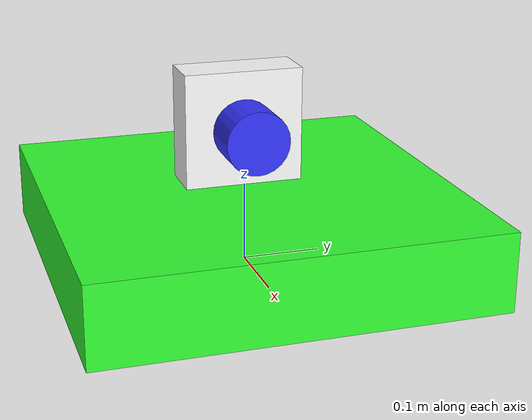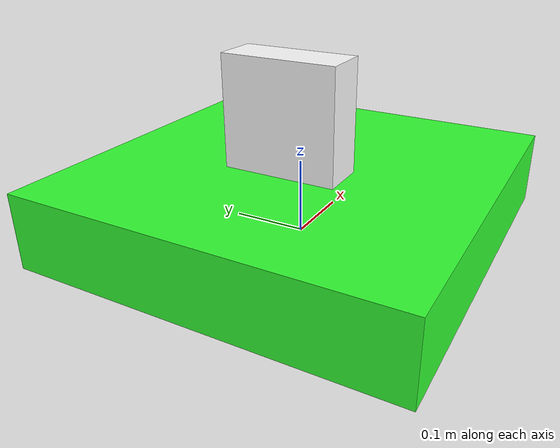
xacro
<?xml version="1.0"?>
<robot xmlns:xacro="http://www.ros.org/wiki/xacro"  name="robot">

    <!-- This is an example of a URDF. -->
    <!-- As we move through the file, new things to note will be pointed out. -->
    <!-- It's not meant an example of GOOD design, but an example of some of the various features of URDF/xacro. -->

    <!-- This will include all the contents of example_include.xacro first. Go check it out! -->
    <xacro:include filename="example_include.xacro" />

    <!-- base_link is a large rectangular plate. Some things to note: -->
    <!-- - We set the visual origin Z to half the box height, so that the link origin sits at the bottom of the box -->
    <!-- - We set the collision to be identical to the visual -->
    <!-- - We specified the colour manually (but still need to enter a name) -->
    <!-- - We specified all the inertial parameters manually -->
    <link name="base_link">
        <visual>
            <origin xyz="0 0 0.05" rpy="0 0 0"/>
            <geometry>
                <box size="0.5 0.5 0.1" />
            </geometry>
            <material name="green">
                <color rgba="0.2 1 0.2 1"/>
            </material>
        </visual>
        <collision>
            <origin xyz="0 0 0.05" rpy="0 0 0"/>
            <geometry>
                <box size="0.5 0.5 0.1" />
            </geometry>
        </collision>
        <inertial>
            <origin xyz="0 0 0.05" rpy="0 0 0"/>
            <mass value="12" />
            <inertia ixx="2.26" ixy="0.0" ixz="0.0" iyy="6.26" iyz="0.0" izz="8.5" />
        </inertial>
    </link>

    <!-- This NOT first link called "world" is empty, but the rviz camera expects it to exist -->
    <link name="world"></link>

    <!-- A simple fixed joint from our empty world link, to our base. -->
    <!-- The base origin is offset from the world origin. -->
    <joint name="base_joint" type="fixed">
        <origin xyz="1.5 1.0 0" rpy="0 0 0"/>
        <parent link="base_link"/>
        <child link="world"/>
    </joint>

<!--    &lt;!&ndash; slider_joint lets slider_link move back and forth along the top of the base in one dimension.  &ndash;&gt;-->
<!--    &lt;!&ndash; - Origin is set to one of the top edges of the base_link box, so that our link skims across the top  &ndash;&gt;-->
<!--    &lt;!&ndash; - It moves along the X axis &ndash;&gt;-->
<!--    &lt;!&ndash; - We need to specify limits for the motion &ndash;&gt;-->

<!--    &lt;!&ndash; slider_link is the box skimming across the top of the base. Its parameters are similar to the base_link, however: &ndash;&gt;-->
<!--    &lt;!&ndash; - Instead of explicitly describing a colour, it uses the named material "blue". It knows about "blue" that material was included in example_include.xacro. &ndash;&gt;-->
<!--    &lt;!&ndash; - Instead of explicitly describing the inertia, we use a macro that was defined in the example_include.xacro &ndash;&gt;-->

<!--    &lt;!&ndash; arm_joint describes the rotation of the arm and is centred around the top corner of the slider box. &ndash;&gt;-->
<!--    &lt;!&ndash; - The axis of rotation is -1 in Y, so that positive is "up" &ndash;&gt;-->
<!--    &lt;!&ndash; - The upper limit uses xacro's mathematical features &ndash;&gt;-->

<!--    &lt;!&ndash; arm_link describes the arm &ndash;&gt;-->
<!--    &lt;!&ndash; - We use the "property" feature to define the arm length and radius and use them multiple times &ndash;&gt;-->
<!--    &lt;!&ndash; - The visual/collision origin is set to halfway along the length (similar to the box), but also with a rotation (again using the mathematical features). &ndash;&gt;-->
<!--    &lt;!&ndash;   This is because the cylinder extends along the Z axis by default, but we want it to be along the X axis (when the joint is at 0) &ndash;&gt;-->

    <!-- camera_joint describes where the camera is relative to the arm -->
    <!-- - Even though the camera isn't moving relative to the arm, it will probably be helpful to have its own link/frame rather than just adding more visuals to the arm -->
    <!-- - For this example, the camera_link origin will be at the centre of the camera's "sensor" -->
    <joint name="camera_joint" type="fixed">
        <origin xyz="0 0 0.17" rpy="0 0 0"/>
        <parent link="base_link"/>
        <child link="camera_link"/>
    </joint>

    <!-- camera_link describes the camera at the end of the arm -->
    <!-- - It has multiple visual elements, which ultimately get combined together -->
    <!-- - Even if we specify different materials, RViz will just colour them all the same as the first -->
    <!-- - Although we could also specify multiple collision geometries, instead we just use a single box that encompasses the whole camera -->
    <link name="camera_link">
        <visual>
            <origin xyz="-0.03 0 0" rpy="0 0 0"/>
            <geometry>
                <box size="0.06 0.15 0.15" />
            </geometry>
            <material name="white" />
        </visual>
        <visual>
            <origin xyz="0.03 0 0" rpy="0 ${pi/2} 0"/>
            <geometry>
                <cylinder length="0.06" radius="0.04" />
            </geometry>
            <material name="blue" />
        </visual>
        <collision>
            <origin xyz="0.0 0 0" rpy="0 0 0"/>
            <geometry>
                <box size="0.12 0.15 0.15" />
            </geometry>
        </collision>
        <xacro:inertial_box mass="0.1" x="0.12" y="0.15" z="0.15">
            <origin xyz="0.0 0 0" rpy="0 0 0"/>
        </xacro:inertial_box>
    </link>

    <xacro:include filename="example_gazebo.xacro" />

</robot>

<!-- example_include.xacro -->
<robot xmlns:xacro="http://www.ros.org/wiki/xacro" >

    <!-- This file is not a robot in and of itself, it just contains some useful tags that could be included in any robot -->

    <!-- Specify some colours -->

    <material name="white">
        <color rgba="1 1 1 1"/>
    </material>

    <material name="orange">
        <color rgba="1 0.3 0.1 1"/>
    </material>

    <material name="blue">
        <color rgba="0.2 0.2 1 1"/>
    </material>

    <!-- Specify some standard inertial calculations https://en.wikipedia.org/wiki/List_of_moments_of_inertia -->
    <!-- These make use of xacro's mathematical functionality -->

    <xacro:macro name="inertial_sphere" params="mass radius *origin">
        <inertial>
            <xacro:insert_block name="origin"/>
            <mass value="${mass}" />
            <inertia ixx="${(2/5) * mass * (radius*radius)}" ixy="0.0" ixz="0.0"
                    iyy="${(2/5) * mass * (radius*radius)}" iyz="0.0"
                    izz="${(2/5) * mass * (radius*radius)}" />
        </inertial>
    </xacro:macro>

    <xacro:macro name="inertial_box" params="mass x y z *origin">
        <inertial>
            <xacro:insert_block name="origin"/>
            <mass value="${mass}" />
            <inertia ixx="${(1/12) * mass * (y*y+z*z)}" ixy="0.0" ixz="0.0"
                    iyy="${(1/12) * mass * (x*x+z*z)}" iyz="0.0"
                    izz="${(1/12) * mass * (x*x+y*y)}" />
        </inertial>
    </xacro:macro>

    <xacro:macro name="inertial_cylinder" params="mass length radius *origin">
        <inertial>
            <xacro:insert_block name="origin"/>
            <mass value="${mass}" />
            <inertia ixx="${(1/12) * mass * (3*radius*radius + length*length)}" ixy="0.0" ixz="0.0"
                    iyy="${(1/12) * mass * (3*radius*radius + length*length)}" iyz="0.0"
                    izz="${(1/2) * mass * (radius*radius)}" />
        </inertial>
    </xacro:macro>

</robot>

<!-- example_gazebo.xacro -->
<robot xmlns:xacro="http://www.ros.org/wiki/xacro">

    <!-- To include it add the following line -->

    <!-- Instead, we need to add gazebo tags for our links that refer to Gazebo materials -->

    <gazebo reference="base_link">
        <material>Gazebo/Green</material>
    </gazebo>

    <gazebo reference="slider_link">
        <material>Gazebo/Blue</material>
    </gazebo>

    <gazebo reference="arm_link">
        <material>Gazebo/Orange</material>
    </gazebo>

    <!-- Gazebo requires the use of plugins to interact with other systems such as ROS. -->

    <!-- This plugin will publish the joint_states for the selected joints
            (which robot_state_publisher can then use to broadcast the approprate tf). -->

    <gazebo>
        <plugin name="gazebo_ros_joint_state_publisher"
            filename="libgazebo_ros_joint_state_publisher.so">
            <update_rate>20</update_rate>
            <joint_name>slider_joint</joint_name>
            <joint_name>arm_joint</joint_name>
        </plugin>
    </gazebo>

    <!-- This plugin will read a JointTrajectory message from the /set_joint_trajectory topic
            and move the machine accordingly. It's a bit clunky but it works. -->
    <gazebo>
        <plugin name="gazebo_ros_joint_pose_trajectory"
            filename="libgazebo_ros_joint_pose_trajectory.so">
            <update_rate>2</update_rate>
        </plugin>
    </gazebo>

    <!-- The next section shows an example of adding a sensor, in this case a depth camera. -->

    <!-- First, create the link and joint for the optical frame -->

    <joint name="camera_optical_joint" type="fixed">
        <origin xyz="0 0 0" rpy="-1.571 0 -1.571" />
        <parent link="camera_link" />
        <child link="camera_link_optical" />
    </joint>

    <link name="camera_link_optical"></link>

    <!-- Add a gazebo tag for the ORIGINAL camera_link (but in the plugin we reference the optical frame so that ROS can orient things correctly) -->
    <!-- Note that although visualise is set to true, it won't actually visualise the depth camera in gazebo. To see the preview,
            try swapping "depth" to "camera"-->
    <gazebo reference="camera_link">
        <sensor type="camera" name="my_camera">
            <update_rate>20</update_rate>
            <visualize>true</visualize>
            <camera name="cam">
                <horizontal_fov>1.3962634</horizontal_fov>
                <image>
                    <width>640</width>
                    <height>480</height>
                    <format>R8B8G8</format>
                </image>
                <clip>
                    <near>0.02</near>
                    <far>300</far>
                </clip>
                <noise>
                    <type>gaussian</type>
                    <mean>0.0</mean>
                    <stddev>0.007</stddev>
                </noise>
            </camera>
            <plugin name="camera_controller" filename="libgazebo_ros_camera.so">
                <frame_name>camera_link_optical</frame_name>
                <min_depth>0.1</min_depth>
                <max_depth>500</max_depth>
            </plugin>
        </sensor>
    </gazebo>

</robot>
